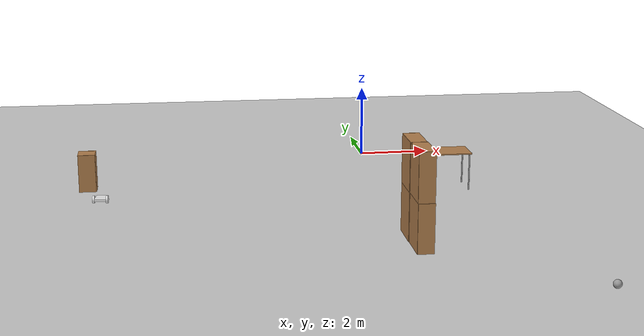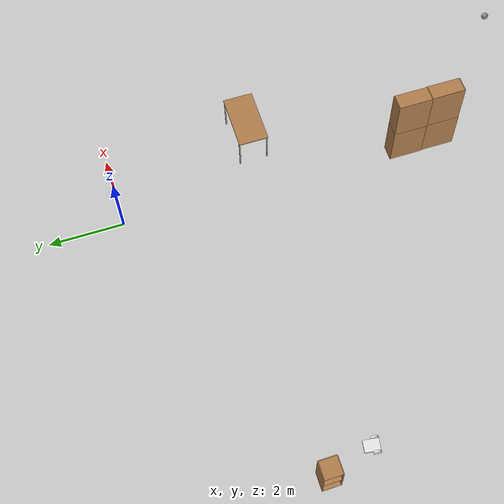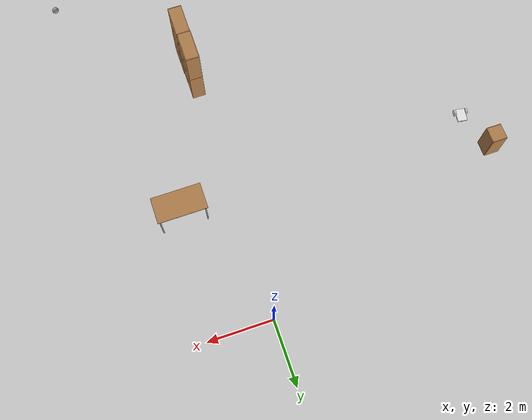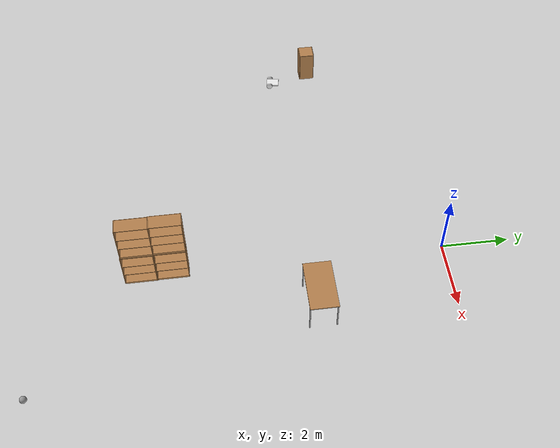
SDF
<sdf version="1.6">
 <world name="default">
  <model name="ground_plane">
   <static>1</static>
   <link name="link">
    <collision name="collision">
     <geometry><plane><normal>0 0 1</normal><size>100 100</size></plane></geometry>
     <surface>
      <contact><collide_bitmask>65535</collide_bitmask></contact>
      <friction><ode><mu>100</mu><mu2>50</mu2></ode></friction>
     </surface>
    </collision>
    <visual name="visual">
     <cast_shadows>0</cast_shadows>
     <geometry><plane><normal>0 0 1</normal><size>100 100</size></plane></geometry>
     <material>
      <script><uri>file://media/materials/scripts/gazebo.material</uri><name>Gazebo/Grey</name></script>
     </material>
    </visual>
   </link>
  </model>
  <model name="bookshelf">
   <static>1</static>
   <link name="link">
    <inertial><mass>1</mass></inertial>
    <collision name="back">
     <pose>0 0.005 0.6 0 -0 0</pose>
     <geometry><box><size>0.9 0.01 1.2</size></box></geometry>
    </collision>
    <visual name="visual1">
     <pose>0 0.005 0.6 0 -0 0</pose>
     <geometry><box><size>0.9 0.01 1.2</size></box></geometry>
     <material>
      <script><uri>file://media/materials/scripts/gazebo.material</uri><name>Gazebo/Wood</name></script>
     </material>
    </visual>
    <collision name="left_side">
     <pose>0.45 -0.195 0.6 0 -0 0</pose>
     <geometry><box><size>0.02 0.4 1.2</size></box></geometry>
    </collision>
    <visual name="visual2">
     <pose>0.45 -0.195 0.6 0 -0 0</pose>
     <geometry><box><size>0.02 0.4 1.2</size></box></geometry>
     <material>
      <script><uri>file://media/materials/scripts/gazebo.material</uri><name>Gazebo/Wood</name></script>
     </material>
    </visual>
    <collision name="right_side">
     <pose>-0.45 -0.195 0.6 0 -0 0</pose>
     <geometry><box><size>0.02 0.4 1.2</size></box></geometry>
    </collision>
    <visual name="visual3">
     <pose>-0.45 -0.195 0.6 0 -0 0</pose>
     <geometry><box><size>0.02 0.4 1.2</size></box></geometry>
     <material>
      <script><uri>file://media/materials/scripts/gazebo.material</uri><name>Gazebo/Wood</name></script>
     </material>
    </visual>
    <collision name="bottom">
     <pose>0 -0.195 0.03 0 -0 0</pose>
     <geometry><box><size>0.88 0.4 0.06</size></box></geometry>
    </collision>
    <visual name="visual4">
     <pose>0 -0.195 0.03 0 -0 0</pose>
     <geometry><box><size>0.88 0.4 0.06</size></box></geometry>
     <material>
      <script><uri>file://media/materials/scripts/gazebo.material</uri><name>Gazebo/Wood</name></script>
     </material>
    </visual>
    <collision name="top">
     <pose>0 -0.195 1.19 0 -0 0</pose>
     <geometry><box><size>0.88 0.4 0.02</size></box></geometry>
    </collision>
    <visual name="visual5">
     <pose>0 -0.195 1.19 0 -0 0</pose>
     <geometry><box><size>0.88 0.4 0.02</size></box></geometry>
     <material>
      <script><uri>file://media/materials/scripts/gazebo.material</uri><name>Gazebo/Wood</name></script>
     </material>
    </visual>
    <collision name="low_shelf">
     <pose>0 -0.195 0.43 0 -0 0</pose>
     <geometry><box><size>0.88 0.4 0.02</size></box></geometry>
    </collision>
    <visual name="visual6">
     <pose>0 -0.195 0.43 0 -0 0</pose>
     <geometry><box><size>0.88 0.4 0.02</size></box></geometry>
     <material>
      <script><uri>file://media/materials/scripts/gazebo.material</uri><name>Gazebo/Wood</name></script>
     </material>
    </visual>
    <collision name="high_shelf">
     <pose>0 -0.195 0.8 0 -0 0</pose>
     <geometry><box><size>0.88 0.4 0.02</size></box></geometry>
    </collision>
    <visual name="visual7">
     <pose>0 -0.195 0.8 0 -0 0</pose>
     <geometry><box><size>0.88 0.4 0.02</size></box></geometry>
     <material>
      <script><uri>file://media/materials/scripts/gazebo.material</uri><name>Gazebo/Wood</name></script>
     </material>
    </visual>
   </link>
   <pose>-0.260213 -8.79014 0 0 -0 1.5707</pose>
  </model>
  <model name="bookshelf_clone">
   <static>1</static>
   <link name="link">
    <inertial><mass>1</mass></inertial>
    <collision name="back">
     <pose>0 0.005 0.6 0 -0 0</pose>
     <geometry><box><size>0.9 0.01 1.2</size></box></geometry>
    </collision>
    <visual name="visual1">
     <pose>0 0.005 0.6 0 -0 0</pose>
     <geometry><box><size>0.9 0.01 1.2</size></box></geometry>
     <material>
      <script><uri>file://media/materials/scripts/gazebo.material</uri><name>Gazebo/Wood</name></script>
     </material>
    </visual>
    <collision name="left_side">
     <pose>0.45 -0.195 0.6 0 -0 0</pose>
     <geometry><box><size>0.02 0.4 1.2</size></box></geometry>
    </collision>
    <visual name="visual2">
     <pose>0.45 -0.195 0.6 0 -0 0</pose>
     <geometry><box><size>0.02 0.4 1.2</size></box></geometry>
     <material>
      <script><uri>file://media/materials/scripts/gazebo.material</uri><name>Gazebo/Wood</name></script>
     </material>
    </visual>
    <collision name="right_side">
     <pose>-0.45 -0.195 0.6 0 -0 0</pose>
     <geometry><box><size>0.02 0.4 1.2</size></box></geometry>
    </collision>
    <visual name="visual3">
     <pose>-0.45 -0.195 0.6 0 -0 0</pose>
     <geometry><box><size>0.02 0.4 1.2</size></box></geometry>
     <material>
      <script><uri>file://media/materials/scripts/gazebo.material</uri><name>Gazebo/Wood</name></script>
     </material>
    </visual>
    <collision name="bottom">
     <pose>0 -0.195 0.03 0 -0 0</pose>
     <geometry><box><size>0.88 0.4 0.06</size></box></geometry>
    </collision>
    <visual name="visual4">
     <pose>0 -0.195 0.03 0 -0 0</pose>
     <geometry><box><size>0.88 0.4 0.06</size></box></geometry>
     <material>
      <script><uri>file://media/materials/scripts/gazebo.material</uri><name>Gazebo/Wood</name></script>
     </material>
    </visual>
    <collision name="top">
     <pose>0 -0.195 1.19 0 -0 0</pose>
     <geometry><box><size>0.88 0.4 0.02</size></box></geometry>
    </collision>
    <visual name="visual5">
     <pose>0 -0.195 1.19 0 -0 0</pose>
     <geometry><box><size>0.88 0.4 0.02</size></box></geometry>
     <material>
      <script><uri>file://media/materials/scripts/gazebo.material</uri><name>Gazebo/Wood</name></script>
     </material>
    </visual>
    <collision name="low_shelf">
     <pose>0 -0.195 0.43 0 -0 0</pose>
     <geometry><box><size>0.88 0.4 0.02</size></box></geometry>
    </collision>
    <visual name="visual6">
     <pose>0 -0.195 0.43 0 -0 0</pose>
     <geometry><box><size>0.88 0.4 0.02</size></box></geometry>
     <material>
      <script><uri>file://media/materials/scripts/gazebo.material</uri><name>Gazebo/Wood</name></script>
     </material>
    </visual>
    <collision name="high_shelf">
     <pose>0 -0.195 0.8 0 -0 0</pose>
     <geometry><box><size>0.88 0.4 0.02</size></box></geometry>
    </collision>
    <visual name="visual7">
     <pose>0 -0.195 0.8 0 -0 0</pose>
     <geometry><box><size>0.88 0.4 0.02</size></box></geometry>
     <material>
      <script><uri>file://media/materials/scripts/gazebo.material</uri><name>Gazebo/Wood</name></script>
     </material>
    </visual>
   </link>
   <pose>-0.27446 -7.87472 0 0 -0 1.5707</pose>
  </model>
  <model name="bookshelf_clone_0">
   <static>1</static>
   <link name="link">
    <inertial><mass>1</mass></inertial>
    <collision name="back">
     <pose>0 0.005 0.6 0 -0 0</pose>
     <geometry><box><size>0.9 0.01 1.2</size></box></geometry>
    </collision>
    <visual name="visual1">
     <pose>0 0.005 0.6 0 -0 0</pose>
     <geometry><box><size>0.9 0.01 1.2</size></box></geometry>
     <material>
      <script><uri>file://media/materials/scripts/gazebo.material</uri><name>Gazebo/Wood</name></script>
     </material>
    </visual>
    <collision name="left_side">
     <pose>0.45 -0.195 0.6 0 -0 0</pose>
     <geometry><box><size>0.02 0.4 1.2</size></box></geometry>
    </collision>
    <visual name="visual2">
     <pose>0.45 -0.195 0.6 0 -0 0</pose>
     <geometry><box><size>0.02 0.4 1.2</size></box></geometry>
     <material>
      <script><uri>file://media/materials/scripts/gazebo.material</uri><name>Gazebo/Wood</name></script>
     </material>
    </visual>
    <collision name="right_side">
     <pose>-0.45 -0.195 0.6 0 -0 0</pose>
     <geometry><box><size>0.02 0.4 1.2</size></box></geometry>
    </collision>
    <visual name="visual3">
     <pose>-0.45 -0.195 0.6 0 -0 0</pose>
     <geometry><box><size>0.02 0.4 1.2</size></box></geometry>
     <material>
      <script><uri>file://media/materials/scripts/gazebo.material</uri><name>Gazebo/Wood</name></script>
     </material>
    </visual>
    <collision name="bottom">
     <pose>0 -0.195 0.03 0 -0 0</pose>
     <geometry><box><size>0.88 0.4 0.06</size></box></geometry>
    </collision>
    <visual name="visual4">
     <pose>0 -0.195 0.03 0 -0 0</pose>
     <geometry><box><size>0.88 0.4 0.06</size></box></geometry>
     <material>
      <script><uri>file://media/materials/scripts/gazebo.material</uri><name>Gazebo/Wood</name></script>
     </material>
    </visual>
    <collision name="top">
     <pose>0 -0.195 1.19 0 -0 0</pose>
     <geometry><box><size>0.88 0.4 0.02</size></box></geometry>
    </collision>
    <visual name="visual5">
     <pose>0 -0.195 1.19 0 -0 0</pose>
     <geometry><box><size>0.88 0.4 0.02</size></box></geometry>
     <material>
      <script><uri>file://media/materials/scripts/gazebo.material</uri><name>Gazebo/Wood</name></script>
     </material>
    </visual>
    <collision name="low_shelf">
     <pose>0 -0.195 0.43 0 -0 0</pose>
     <geometry><box><size>0.88 0.4 0.02</size></box></geometry>
    </collision>
    <visual name="visual6">
     <pose>0 -0.195 0.43 0 -0 0</pose>
     <geometry><box><size>0.88 0.4 0.02</size></box></geometry>
     <material>
      <script><uri>file://media/materials/scripts/gazebo.material</uri><name>Gazebo/Wood</name></script>
     </material>
    </visual>
    <collision name="high_shelf">
     <pose>0 -0.195 0.8 0 -0 0</pose>
     <geometry><box><size>0.88 0.4 0.02</size></box></geometry>
    </collision>
    <visual name="visual7">
     <pose>0 -0.195 0.8 0 -0 0</pose>
     <geometry><box><size>0.88 0.4 0.02</size></box></geometry>
     <material>
      <script><uri>file://media/materials/scripts/gazebo.material</uri><name>Gazebo/Wood</name></script>
     </material>
    </visual>
   </link>
   <pose>-0.263418 -8.77504 1.20827 0 -0 1.5707</pose>
  </model>
  <model name="bookshelf_clone_0_clone">
   <static>1</static>
   <link name="link">
    <inertial><mass>1</mass></inertial>
    <collision name="back">
     <pose>0 0.005 0.6 0 -0 0</pose>
     <geometry><box><size>0.9 0.01 1.2</size></box></geometry>
    </collision>
    <visual name="visual1">
     <pose>0 0.005 0.6 0 -0 0</pose>
     <geometry><box><size>0.9 0.01 1.2</size></box></geometry>
     <material>
      <script><uri>file://media/materials/scripts/gazebo.material</uri><name>Gazebo/Wood</name></script>
     </material>
    </visual>
    <collision name="left_side">
     <pose>0.45 -0.195 0.6 0 -0 0</pose>
     <geometry><box><size>0.02 0.4 1.2</size></box></geometry>
    </collision>
    <visual name="visual2">
     <pose>0.45 -0.195 0.6 0 -0 0</pose>
     <geometry><box><size>0.02 0.4 1.2</size></box></geometry>
     <material>
      <script><uri>file://media/materials/scripts/gazebo.material</uri><name>Gazebo/Wood</name></script>
     </material>
    </visual>
    <collision name="right_side">
     <pose>-0.45 -0.195 0.6 0 -0 0</pose>
     <geometry><box><size>0.02 0.4 1.2</size></box></geometry>
    </collision>
    <visual name="visual3">
     <pose>-0.45 -0.195 0.6 0 -0 0</pose>
     <geometry><box><size>0.02 0.4 1.2</size></box></geometry>
     <material>
      <script><uri>file://media/materials/scripts/gazebo.material</uri><name>Gazebo/Wood</name></script>
     </material>
    </visual>
    <collision name="bottom">
     <pose>0 -0.195 0.03 0 -0 0</pose>
     <geometry><box><size>0.88 0.4 0.06</size></box></geometry>
    </collision>
    <visual name="visual4">
     <pose>0 -0.195 0.03 0 -0 0</pose>
     <geometry><box><size>0.88 0.4 0.06</size></box></geometry>
     <material>
      <script><uri>file://media/materials/scripts/gazebo.material</uri><name>Gazebo/Wood</name></script>
     </material>
    </visual>
    <collision name="top">
     <pose>0 -0.195 1.19 0 -0 0</pose>
     <geometry><box><size>0.88 0.4 0.02</size></box></geometry>
    </collision>
    <visual name="visual5">
     <pose>0 -0.195 1.19 0 -0 0</pose>
     <geometry><box><size>0.88 0.4 0.02</size></box></geometry>
     <material>
      <script><uri>file://media/materials/scripts/gazebo.material</uri><name>Gazebo/Wood</name></script>
     </material>
    </visual>
    <collision name="low_shelf">
     <pose>0 -0.195 0.43 0 -0 0</pose>
     <geometry><box><size>0.88 0.4 0.02</size></box></geometry>
    </collision>
    <visual name="visual6">
     <pose>0 -0.195 0.43 0 -0 0</pose>
     <geometry><box><size>0.88 0.4 0.02</size></box></geometry>
     <material>
      <script><uri>file://media/materials/scripts/gazebo.material</uri><name>Gazebo/Wood</name></script>
     </material>
    </visual>
    <collision name="high_shelf">
     <pose>0 -0.195 0.8 0 -0 0</pose>
     <geometry><box><size>0.88 0.4 0.02</size></box></geometry>
    </collision>
    <visual name="visual7">
     <pose>0 -0.195 0.8 0 -0 0</pose>
     <geometry><box><size>0.88 0.4 0.02</size></box></geometry>
     <material>
      <script><uri>file://media/materials/scripts/gazebo.material</uri><name>Gazebo/Wood</name></script>
     </material>
    </visual>
   </link>
   <pose>-0.277138 -7.87739 1.20949 0 -0 1.5707</pose>
  </model>
  <model name="table_0">
   <static>1</static>
   <link name="link">
    <collision name="surface">
     <pose>0 0 1 0 -0 0</pose>
     <geometry><box><size>1.5 0.8 0.03</size></box></geometry>
     <surface><friction><ode><mu>0.6</mu><mu2>0.6</mu2></ode></friction></surface>
    </collision>
    <visual name="visual1">
     <pose>0 0 1 0 -0 0</pose>
     <geometry><box><size>1.5 0.8 0.03</size></box></geometry>
     <material>
      <script><uri>file://media/materials/scripts/gazebo.material</uri><name>Gazebo/Wood</name></script>
     </material>
    </visual>
    <collision name="front_left_leg">
     <pose>0.68 0.38 0.5 0 -0 0</pose>
     <geometry><cylinder><radius>0.02</radius><length>1</length></cylinder></geometry>
    </collision>
    <visual name="front_left_leg">
     <pose>0.68 0.38 0.5 0 -0 0</pose>
     <geometry><cylinder><radius>0.02</radius><length>1</length></cylinder></geometry>
     <material>
      <script><uri>file://media/materials/scripts/gazebo.material</uri><name>Gazebo/Grey</name></script>
     </material>
    </visual>
    <collision name="front_right_leg">
     <pose>0.68 -0.38 0.5 0 -0 0</pose>
     <geometry><cylinder><radius>0.02</radius><length>1</length></cylinder></geometry>
    </collision>
    <visual name="front_right_leg">
     <pose>0.68 -0.38 0.5 0 -0 0</pose>
     <geometry><cylinder><radius>0.02</radius><length>1</length></cylinder></geometry>
     <material>
      <script><uri>file://media/materials/scripts/gazebo.material</uri><name>Gazebo/Grey</name></script>
     </material>
    </visual>
    <collision name="back_right_leg">
     <pose>-0.68 -0.38 0.5 0 -0 0</pose>
     <geometry><cylinder><radius>0.02</radius><length>1</length></cylinder></geometry>
    </collision>
    <visual name="back_right_leg">
     <pose>-0.68 -0.38 0.5 0 -0 0</pose>
     <geometry><cylinder><radius>0.02</radius><length>1</length></cylinder></geometry>
     <material>
      <script><uri>file://media/materials/scripts/gazebo.material</uri><name>Gazebo/Grey</name></script>
     </material>
    </visual>
    <collision name="back_left_leg">
     <pose>-0.68 0.38 0.5 0 -0 0</pose>
     <geometry><cylinder><radius>0.02</radius><length>1</length></cylinder></geometry>
    </collision>
    <visual name="back_left_leg">
     <pose>-0.68 0.38 0.5 0 -0 0</pose>
     <geometry><cylinder><radius>0.02</radius><length>1</length></cylinder></geometry>
     <material>
      <script><uri>file://media/materials/scripts/gazebo.material</uri><name>Gazebo/Grey</name></script>
     </material>
    </visual>
   </link>
   <pose>1.54215 -3.86728 0 0 -0 0</pose>
  </model>
  <model name="cabinet">
   <static>1</static>
   <link name="cabinet_bottom_plate">
    <inertial>
     <pose>0 0 -1 0 -0 0</pose>
     <inertia><ixx>2.05</ixx><ixy>0</ixy><ixz>0</ixz><iyy>2.05</iyy><iyz>0</iyz><izz>2.05</izz></inertia>
     <mass>25</mass>
    </inertial>
    <collision name="cabinet_bottom_plate_geom">
     <pose>0 0 0.01 0 -0 0</pose>
     <geometry><box><size>0.45 0.45 0.02</size></box></geometry>
    </collision>
    <visual name="cabinet_bottom_plate_geom_visual">
     <pose>0 0 0.01 0 -0 0</pose>
     <geometry><box><size>0.45 0.45 0.02</size></box></geometry>
     <material>
      <script><uri>file://media/materials/scripts/gazebo.material</uri><name>Gazebo/Wood</name></script>
     </material>
    </visual>
    <collision name="cabinet_bottom_plate_geom_cabinet_back_plate">
     <pose>0.235 0 0.51 0 -0 0</pose>
     <geometry><box><size>0.02 0.45 1.02</size></box></geometry>
    </collision>
    <visual name="cabinet_bottom_plate_geom_cabinet_back_plate_visual">
     <pose>0.235 0 0.51 0 -0 0</pose>
     <geometry><box><size>0.02 0.45 1.02</size></box></geometry>
     <material>
      <script><uri>file://media/materials/scripts/gazebo.material</uri><name>Gazebo/Wood</name></script>
     </material>
    </visual>
    <collision name="cabinet_bottom_plate_geom_cabinet_left_plate">
     <pose>0 0.235 0.51 0 -0 0</pose>
     <geometry><box><size>0.45 0.02 1.02</size></box></geometry>
    </collision>
    <visual name="cabinet_bottom_plate_geom_cabinet_left_plate_visual">
     <pose>0 0.235 0.51 0 -0 0</pose>
     <geometry><box><size>0.45 0.02 1.02</size></box></geometry>
     <material>
      <script><uri>file://media/materials/scripts/gazebo.material</uri><name>Gazebo/Wood</name></script>
     </material>
    </visual>
    <collision name="cabinet_bottom_plate_geom_cabinet_middle_plate">
     <pose>0 0 0.51 0 -0 0</pose>
     <geometry><box><size>0.45 0.45 0.02</size></box></geometry>
    </collision>
    <visual name="cabinet_bottom_plate_geom_cabinet_middle_plate_visual">
     <pose>0 0 0.51 0 -0 0</pose>
     <geometry><box><size>0.45 0.45 0.02</size></box></geometry>
     <material>
      <script><uri>file://media/materials/scripts/gazebo.material</uri><name>Gazebo/Wood</name></script>
     </material>
    </visual>
    <collision name="cabinet_bottom_plate_geom_cabinet_right_plate">
     <pose>0 -0.235 0.51 0 -0 0</pose>
     <geometry><box><size>0.45 0.02 1.02</size></box></geometry>
    </collision>
    <visual name="cabinet_bottom_plate_geom_cabinet_right_plate_visual">
     <pose>0 -0.235 0.51 0 -0 0</pose>
     <geometry><box><size>0.45 0.02 1.02</size></box></geometry>
     <material>
      <script><uri>file://media/materials/scripts/gazebo.material</uri><name>Gazebo/Wood</name></script>
     </material>
    </visual>
    <collision name="cabinet_bottom_plate_geom_cabinet_top_plate">
     <pose>0 0 1.01 0 -0 0</pose>
     <geometry><box><size>0.45 0.45 0.02</size></box></geometry>
    </collision>
    <visual name="cabinet_bottom_plate_geom_cabinet_top_plate_visual">
     <pose>0 0 1.01 0 -0 0</pose>
     <geometry><box><size>0.45 0.45 0.02</size></box></geometry>
     <material>
      <script><uri>file://media/materials/scripts/gazebo.material</uri><name>Gazebo/Wood</name></script>
     </material>
    </visual>
   </link>
   <pose>-7.9761 -2.91848 0 0 -0 0</pose>
  </model>
  <model name="my_robot_v2_0">
   <link name="link_0">
    <pose>0 0.0125 0.0125 0 -0 0</pose>
    <inertial>
     <mass>1</mass>
     <inertia>
      <ixx>0.166667</ixx>
      <ixy>0</ixy>
      <ixz>0</ixz>
      <iyy>0.166667</iyy>
      <iyz>0</iyz>
      <izz>0.166667</izz>
     </inertia>
    </inertial>
    <visual name="visual">
     <geometry><box><size>0.3 0.4 0.05</size></box></geometry>
     <material>
      <lighting>1</lighting>
      <script><uri>file://media/materials/scripts/gazebo.material</uri><name>Gazebo/White</name></script>
      <shader type="pixel"><normal_map>__default__</normal_map></shader>
      <ambient>1 0.3 0.3 1</ambient>
      <diffuse>1 0.7 0.7 1</diffuse>
      <specular>0.01 0.01 0.01 1</specular>
      <emissive>0 0 0 1</emissive>
     </material>
    </visual>
    <collision name="collision">
     <geometry><box><size>0.3 0.4 0.05</size></box></geometry>
     <surface>
      <friction>
       <ode><mu>1</mu><mu2>1</mu2><fdir1>0 0 0</fdir1><slip1>0</slip1><slip2>0</slip2></ode>
       <torsional>
        <coefficient>1</coefficient>
        <patch_radius>0</patch_radius>
        <surface_radius>0</surface_radius>
        <use_patch_radius>1</use_patch_radius>
        <ode><slip>0</slip></ode>
       </torsional>
      </friction>
      <bounce><restitution_coefficient>0</restitution_coefficient><threshold>1e+06</threshold></bounce>
      <contact>
       <collide_without_contact>0</collide_without_contact>
       <collide_without_contact_bitmask>1</collide_without_contact_bitmask>
       <collide_bitmask>1</collide_bitmask>
       <ode>
        <soft_cfm>0</soft_cfm>
        <soft_erp>0.2</soft_erp>
        <kp>1e+13</kp>
        <kd>1</kd>
        <max_vel>0.01</max_vel>
        <min_depth>0</min_depth>
       </ode>
       <bullet>
        <split_impulse>1</split_impulse>
        <split_impulse_penetration_threshold>-0.01</split_impulse_penetration_threshold>
        <soft_cfm>0</soft_cfm>
        <soft_erp>0.2</soft_erp>
        <kp>1e+13</kp>
        <kd>1</kd>
       </bullet>
      </contact>
     </surface>
    </collision>
   </link>
   <link name="link_1">
    <pose>0 0.1625 -0.0375 0 -0 0</pose>
    <inertial>
     <mass>1</mass>
     <inertia><ixx>0.1</ixx><ixy>0</ixy><ixz>0</ixz><iyy>0.1</iyy><iyz>0</iyz><izz>0.1</izz></inertia>
    </inertial>
    <visual name="visual">
     <geometry><sphere><radius>0.05</radius></sphere></geometry>
     <material>
      <lighting>1</lighting>
      <script><uri>file://media/materials/scripts/gazebo.material</uri><name>Gazebo/White</name></script>
      <shader type="pixel"><normal_map>__default__</normal_map></shader>
      <ambient>0.3 0.3 0.3 1</ambient>
      <diffuse>0.7 0.7 0.7 1</diffuse>
      <specular>0.01 0.01 0.01 1</specular>
      <emissive>0 0 0 1</emissive>
     </material>
    </visual>
    <collision name="collision">
     <geometry><sphere><radius>0.05</radius></sphere></geometry>
     <surface>
      <friction>
       <ode><mu>1</mu><mu2>1</mu2><fdir1>0 0 0</fdir1><slip1>0</slip1><slip2>0</slip2></ode>
       <torsional>
        <coefficient>1</coefficient>
        <patch_radius>0</patch_radius>
        <surface_radius>0</surface_radius>
        <use_patch_radius>1</use_patch_radius>
        <ode><slip>0</slip></ode>
       </torsional>
      </friction>
      <bounce><restitution_coefficient>0</restitution_coefficient><threshold>1e+06</threshold></bounce>
      <contact>
       <collide_without_contact>0</collide_without_contact>
       <collide_without_contact_bitmask>1</collide_without_contact_bitmask>
       <collide_bitmask>1</collide_bitmask>
       <ode>
        <soft_cfm>0</soft_cfm>
        <soft_erp>0.2</soft_erp>
        <kp>1e+13</kp>
        <kd>1</kd>
        <max_vel>0.01</max_vel>
        <min_depth>0</min_depth>
       </ode>
       <bullet>
        <split_impulse>1</split_impulse>
        <split_impulse_penetration_threshold>-0.01</split_impulse_penetration_threshold>
        <soft_cfm>0</soft_cfm>
        <soft_erp>0.2</soft_erp>
        <kp>1e+13</kp>
        <kd>1</kd>
       </bullet>
      </contact>
     </surface>
    </collision>
   </link>
   <link name="link_2">
    <pose>-0.175 -0.0875 0.0125 0 -0 0</pose>
    <inertial>
     <mass>1</mass>
     <inertia><ixx>0.145833</ixx><ixy>0</ixy><ixz>0</ixz><iyy>0.145833</iyy><iyz>0</iyz><izz>0.125</izz></inertia>
    </inertial>
    <visual name="visual">
     <pose>0 0 0 1.5707 0 1.5707</pose>
     <geometry><cylinder><radius>0.1</radius><length>0.05</length></cylinder></geometry>
     <material>
      <lighting>1</lighting>
      <script><uri>file://media/materials/scripts/gazebo.material</uri><name>Gazebo/White</name></script>
      <shader type="pixel"><normal_map>__default__</normal_map></shader>
      <ambient>0.3 0.3 0.3 1</ambient>
      <diffuse>0.7 0.7 0.7 1</diffuse>
      <specular>0.01 0.01 0.01 1</specular>
      <emissive>0 0 0 1</emissive>
     </material>
    </visual>
    <collision name="collision">
     <pose>0 0 0 1.5707 0 1.5707</pose>
     <geometry><cylinder><radius>0.1</radius><length>0.05</length></cylinder></geometry>
     <surface>
      <friction>
       <ode><mu>1</mu><mu2>1</mu2><fdir1>0 0 0</fdir1><slip1>0</slip1><slip2>0</slip2></ode>
       <torsional>
        <coefficient>1</coefficient>
        <patch_radius>0</patch_radius>
        <surface_radius>0</surface_radius>
        <use_patch_radius>1</use_patch_radius>
        <ode><slip>0</slip></ode>
       </torsional>
      </friction>
      <bounce><restitution_coefficient>0</restitution_coefficient><threshold>1e+06</threshold></bounce>
      <contact>
       <collide_without_contact>0</collide_without_contact>
       <collide_without_contact_bitmask>1</collide_without_contact_bitmask>
       <collide_bitmask>1</collide_bitmask>
       <ode>
        <soft_cfm>0</soft_cfm>
        <soft_erp>0.2</soft_erp>
        <kp>1e+13</kp>
        <kd>1</kd>
        <max_vel>0.01</max_vel>
        <min_depth>0</min_depth>
       </ode>
       <bullet>
        <split_impulse>1</split_impulse>
        <split_impulse_penetration_threshold>-0.01</split_impulse_penetration_threshold>
        <soft_cfm>0</soft_cfm>
        <soft_erp>0.2</soft_erp>
        <kp>1e+13</kp>
        <kd>1</kd>
       </bullet>
      </contact>
     </surface>
    </collision>
   </link>
   <link name="link_2_clone">
    <pose>0.175 -0.0875 0.0125 0 -0 0</pose>
    <inertial>
     <mass>1</mass>
     <inertia><ixx>0.145833</ixx><ixy>0</ixy><ixz>0</ixz><iyy>0.145833</iyy><iyz>0</iyz><izz>0.125</izz></inertia>
    </inertial>
    <visual name="visual">
     <pose>0 0 0 1.5707 0 1.5707</pose>
     <geometry><cylinder><radius>0.1</radius><length>0.05</length></cylinder></geometry>
     <material>
      <lighting>1</lighting>
      <script><uri>file://media/materials/scripts/gazebo.material</uri><name>Gazebo/White</name></script>
      <shader type="pixel"><normal_map>__default__</normal_map></shader>
      <ambient>0.3 0.3 0.3 1</ambient>
      <diffuse>0.7 0.7 0.7 1</diffuse>
      <specular>0.01 0.01 0.01 1</specular>
      <emissive>0 0 0 1</emissive>
     </material>
    </visual>
    <collision name="collision">
     <pose>0 0 0 1.5707 0 1.5707</pose>
     <geometry><cylinder><radius>0.1</radius><length>0.05</length></cylinder></geometry>
     <surface>
      <friction>
       <ode><mu>1</mu><mu2>1</mu2><fdir1>0 0 0</fdir1><slip1>0</slip1><slip2>0</slip2></ode>
       <torsional>
        <coefficient>1</coefficient>
        <patch_radius>0</patch_radius>
        <surface_radius>0</surface_radius>
        <use_patch_radius>1</use_patch_radius>
        <ode><slip>0</slip></ode>
       </torsional>
      </friction>
      <bounce><restitution_coefficient>0</restitution_coefficient><threshold>1e+06</threshold></bounce>
      <contact>
       <collide_without_contact>0</collide_without_contact>
       <collide_without_contact_bitmask>1</collide_without_contact_bitmask>
       <collide_bitmask>1</collide_bitmask>
       <ode>
        <soft_cfm>0</soft_cfm>
        <soft_erp>0.2</soft_erp>
        <kp>1e+13</kp>
        <kd>1</kd>
        <max_vel>0.01</max_vel>
        <min_depth>0</min_depth>
       </ode>
       <bullet>
        <split_impulse>1</split_impulse>
        <split_impulse_penetration_threshold>-0.01</split_impulse_penetration_threshold>
        <soft_cfm>0</soft_cfm>
        <soft_erp>0.2</soft_erp>
        <kp>1e+13</kp>
        <kd>1</kd>
       </bullet>
      </contact>
     </surface>
    </collision>
   </link>
   <joint name="link_0_JOINT_1" type="ball">
    <parent>link_0</parent>
    <child>link_1</child>
    <physics>
     <ode><limit><cfm>0</cfm><erp>0.2</erp></limit><suspension><cfm>0</cfm><erp>0.2</erp></suspension></ode>
    </physics>
   </joint>
   <joint name="link_0_JOINT_2" type="revolute">
    <parent>link_0</parent>
    <child>link_2</child>
    <axis>
     <xyz>1 0 0</xyz>
     <use_parent_model_frame>0</use_parent_model_frame>
     <limit>
      <lower>-1.79769e+308</lower>
      <upper>1.79769e+308</upper>
      <effort>-1</effort>
      <velocity>-1</velocity>
     </limit>
     <dynamics>
      <spring_reference>0</spring_reference>
      <spring_stiffness>0</spring_stiffness>
      <damping>0</damping>
     </dynamics>
    </axis>
    <physics>
     <ode><limit><cfm>0</cfm><erp>0.2</erp></limit><suspension><cfm>0</cfm><erp>0.2</erp></suspension></ode>
    </physics>
   </joint>
   <joint name="link_0_JOINT_3" type="revolute">
    <parent>link_0</parent>
    <child>link_2_clone</child>
    <axis>
     <xyz>1 0 0</xyz>
     <use_parent_model_frame>0</use_parent_model_frame>
     <limit>
      <lower>-1.79769e+308</lower>
      <upper>1.79769e+308</upper>
      <effort>-1</effort>
      <velocity>-1</velocity>
     </limit>
     <dynamics>
      <spring_reference>0</spring_reference>
      <spring_stiffness>0</spring_stiffness>
      <damping>0</damping>
     </dynamics>
    </axis>
    <physics>
     <ode><limit><cfm>0</cfm><erp>0.2</erp></limit><suspension><cfm>0</cfm><erp>0.2</erp></suspension></ode>
    </physics>
   </joint>
   <static>0</static>
   <pose>-7.57723 -4.13526 0.087501 -1.3e-05 -4e-06 -0.145296</pose>
  </model>
  <model name="my_ball">
   <link name="link_5">
    <inertial>
     <mass>1</mass>
     <inertia><ixx>0.1</ixx><ixy>0</ixy><ixz>0</ixz><iyy>0.1</iyy><iyz>0</iyz><izz>0.1</izz></inertia>
    </inertial>
    <visual name="visual">
     <pose>0 0 0.1 0 -0 0</pose>
     <geometry><sphere><radius>0.1</radius></sphere></geometry>
     <material>
      <lighting>1</lighting>
      <script><uri>file://media/materials/scripts/gazebo.material</uri><name>Gazebo/Grey</name></script>
      <shader type="pixel"><normal_map>__default__</normal_map></shader>
      <ambient>1 1 1 1</ambient>
      <diffuse>1 1 1 1</diffuse>
      <specular>1 1 1 1</specular>
      <emissive>1 1 1 1</emissive>
     </material>
    </visual>
    <collision name="collision">
     <pose>0 0 0.1 0 -0 0</pose>
     <geometry><sphere><radius>0.1</radius></sphere></geometry>
     <surface>
      <friction>
       <ode><mu>1</mu><mu2>1</mu2><fdir1>0 0 0</fdir1><slip1>0</slip1><slip2>0</slip2></ode>
       <torsional>
        <coefficient>1</coefficient>
        <patch_radius>0</patch_radius>
        <surface_radius>0</surface_radius>
        <use_patch_radius>1</use_patch_radius>
        <ode><slip>0</slip></ode>
       </torsional>
      </friction>
      <bounce><restitution_coefficient>0</restitution_coefficient><threshold>1e+06</threshold></bounce>
      <contact>
       <collide_without_contact>0</collide_without_contact>
       <collide_without_contact_bitmask>1</collide_without_contact_bitmask>
       <collide_bitmask>1</collide_bitmask>
       <ode>
        <soft_cfm>0</soft_cfm>
        <soft_erp>0.2</soft_erp>
        <kp>1e+13</kp>
        <kd>1</kd>
        <max_vel>0.01</max_vel>
        <min_depth>0</min_depth>
       </ode>
       <bullet>
        <split_impulse>1</split_impulse>
        <split_impulse_penetration_threshold>-0.01</split_impulse_penetration_threshold>
        <soft_cfm>0</soft_cfm>
        <soft_erp>0.2</soft_erp>
        <kp>1e+13</kp>
        <kd>1</kd>
       </bullet>
      </contact>
     </surface>
    </collision>
   </link>
   <static>0</static>
   <pose>3.4589 -11.8724 0 0 -0 0</pose>
  </model>
 </world>
</sdf>
